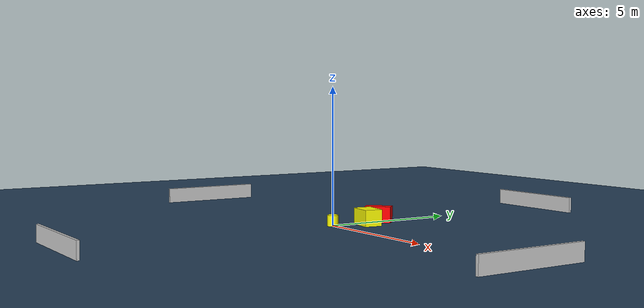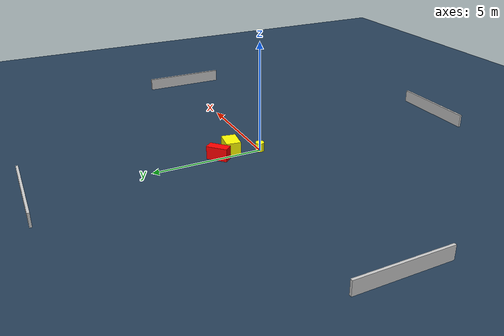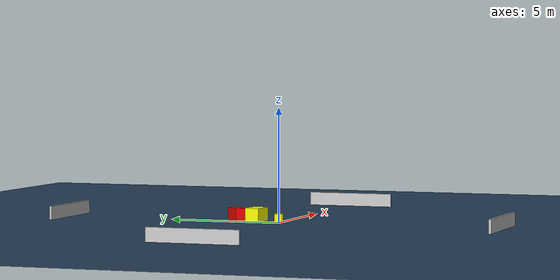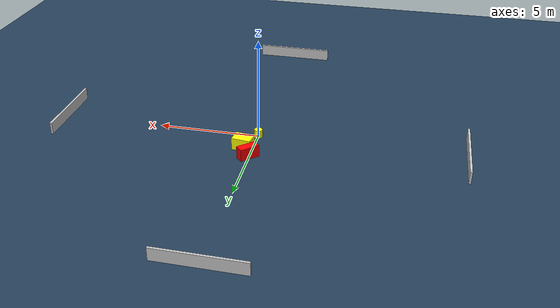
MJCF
<?xml version="1.0" ?>
<mujoco model="generated_environment">
  <option timestep="0.01" integrator="RK4" cone="elliptic"/>
  <default>
    <geom density="1"/>
  </default>
  <asset>
    <texture builtin="gradient" height="3072" name="skybox" rgb1="0.3 0.5 0.7" rgb2="0 0 0" type="skybox" width="512"/>
    <texture builtin="checker" height="300" name="groundplane" rgb1="0.2 0.3 0.4" rgb2="0.1 0.2 0.3" type="2d" width="300"/>
    <material name="groundplane" reflectance="0.2" texrepeat="5 5" texture="groundplane"/>
  </asset>
  <worldbody>
    <light dir="0 0 -1" directional="true" pos="0 0 1.5"/>
    <geom condim="3" friction="0.5 0.005 0.001" material="groundplane" name="floor" pos="0 0 0" size="0 0 0.05" type="plane"/>
    <body name="walls">
      <geom name="wall_1" condim="4" pos="-10.0 0.0 0.3" rgba="0.800000011920929 0.800000011920929 0.800000011920929 1.0" size="0.05 2.0 0.3" type="box"/>
      <geom name="wall_2" condim="4" pos="10.0 0.0 0.3" rgba="0.800000011920929 0.800000011920929 0.800000011920929 1.0" size="0.05 2.0 0.3" type="box"/>
      <geom name="wall_3" condim="4" pos="0.0 -10.0 0.3" rgba="0.800000011920929 0.800000011920929 0.800000011920929 1.0" size="2.0 0.05 0.3" type="box"/>
      <geom name="wall_4" condim="4" pos="0.0 10.0 0.3" rgba="0.800000011920929 0.800000011920929 0.800000011920929 1.0" size="2.0 0.05 0.3" type="box"/>
    </body>
    <body name="robot">
      <joint name="joint_x" type="slide" pos="0 0 0" axis="1 0 0"/>
      <joint name="joint_y" type="slide" pos="0 0 0" axis="0 1 0"/>
      <geom name="robot" type="cylinder" pos="0.0 0.0 0.2" size="0.2 0.2 0.0" mass="5.0" friction="1.0 0.005 0.0001" condim="4" rgba="1.0 1.0 0.0 1.0"/>
    </body>
    <body name="obstacle_1_movable">
      <geom name="obstacle_1_movable" condim="4" pos="0.47531878854334514 1.2045254580795013 0.3" euler="0 0 172.056385085306" friction="0.0 0.005 0.001" rgba="1.0 1.0 0.0 1.0" size="0.46310318601045486 0.3302179051559112 0.3" type="box" mass="0.1"/>
      <joint type="free"/>
    </body>
    <body name="obstacle_2_static">
      <geom name="obstacle_2_static" condim="4" pos="0.058371970647020384 1.9835387026784403 0.3" euler="0 0 312.72872081421997" friction="0.0 0.005 0.001" rgba="1.0 0.0 0.0 1.0" size="0.21435357413511197 0.48004131004347167 0.3" type="box"/>
    </body>
  </worldbody>
  <actuator>
    <motor name="actuator_x" joint="joint_x" gear="1" ctrlrange="-1 1"/>
    <motor name="actuator_y" joint="joint_y" gear="1" ctrlrange="-1 1"/>
  </actuator>
</mujoco>
